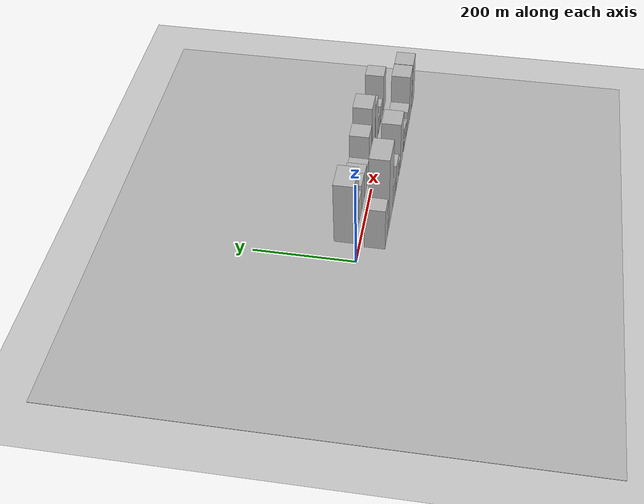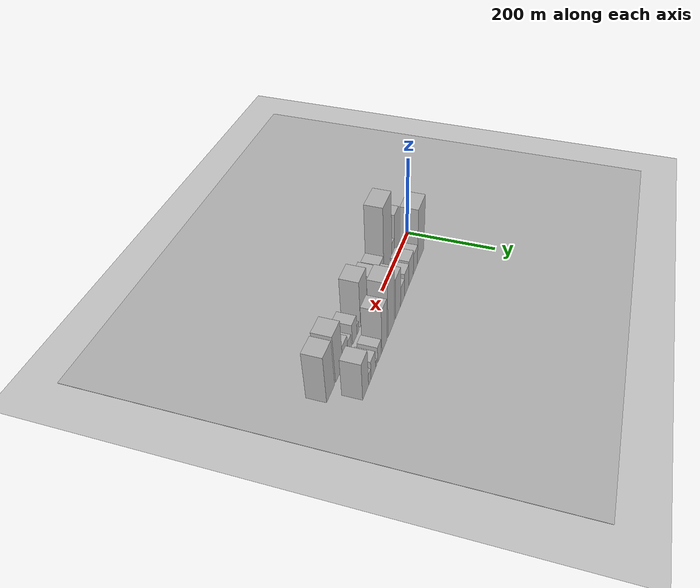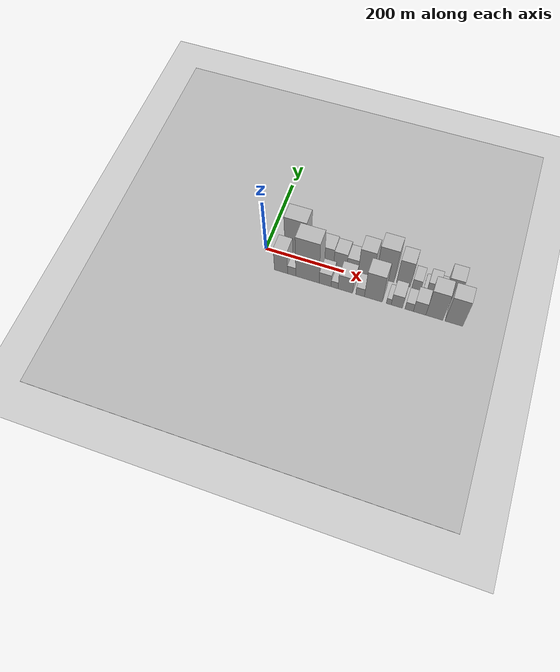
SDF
<?xml version="1.0" encoding="utf-8"?>

<sdf version="1.6">

   <world name="default">

      <gui fullscreen="0">

         <camera name="user_camera">

            <pose>-15 0 4.57585 0 0 0</pose>

            <view_controller>orbit</view_controller>

         </camera>

      </gui>

      <scene>

         <sky>

           <clouds>

             <speed>12</speed>

           </clouds>

         </sky>

         <ambient>0.4 0.4 0.4 1</ambient>

         <background>0.7 0.7 0.7 1</background>

         <shadows>1</shadows>

      </scene>

      <gravity>0 0 -9.8066</gravity>

      <magnetic_field>6e-06 2.3e-05 -4.2e-05</magnetic_field>

      <physics default="0" name="default_physics" type="ode">

         <ode>

            <solver>

               <type>quick</type>

               <iters>10</iters>

               <sor>1.0</sor>

               <use_dynamic_moi_rescaling>0</use_dynamic_moi_rescaling>

            </solver>

            <constraints>

               <cfm>0</cfm>

               <erp>0.2</erp>

               <contact_max_correcting_vel>100</contact_max_correcting_vel>

               <contact_surface_layer>0.001</contact_surface_layer>

            </constraints>

         </ode>

         <max_step_size>0.004</max_step_size>

         <real_time_factor>1</real_time_factor>

         <real_time_update_rate>250</real_time_update_rate>

      </physics>

      <light name="sun" type="directional">

         <cast_shadows>1</cast_shadows>

         <pose>0 0 10 0 0 0</pose>

         <diffuse>0.8 0.8 0.8 1</diffuse>

         <specular>0.2 0.2 0.2 1</specular>

         <attenuation>

            <range>1000</range>

            <constant>0.9</constant>

            <linear>0.01</linear>

            <quadratic>0.001</quadratic>

         </attenuation>

         <direction>-0.5 0.1 -0.9</direction>

      </light>

      <include>

         <name>ground_plane_1</name>

         <uri>model://HANNAS_ground_plane</uri>

         <pose>0 0 0  0 0 0</pose>

      </include>

      <include>

         <name>ground_plane_2</name>

         <uri>model://HANNAS_ground_plane</uri>

         <pose>100 0 0  0 0 0</pose>

      </include>

      <model name="building_1">

         <static>1</static>

         <pose frame="">73.9904 30.0000 0 0.000000 0.000000 1.570796</pose>

         <link name="link">

            <pose frame="">0 0 75.00 0 0 0</pose>

            <collision name="collision">

               <geometry>

                  <box>

                     <size>40.0000 55.9807 150.0000</size>

                  </box>

               </geometry>

               <max_contacts>10</max_contacts>

               <surface>

                  <contact>

                     <ode/>

                  </contact>

                  <bounce/>

                  <friction>

                     <torsional>

                        <ode/>

                     </torsional>

                     <ode/>

                  </friction>

               </surface>

            </collision>

            <visual name="visual">

               <cast_shadows>0</cast_shadows>

               <geometry>

                  <box>

                     <size>40.0000 55.9807 150.0000</size>

                  </box>

               </geometry>

               <material>

                  <script>

                     <uri>model://HANNAS_wall/materials/scripts</uri>

                     <uri>model://HANNAS_wall/materials/textures</uri>

                     <name>vrc/HANNAS_wall</name>

                  </script>

               </material>

            </visual>

            <self_collide>0</self_collide>

            <enable_wind>0</enable_wind>

            <kinematic>0</kinematic>

         </link>

      </model>

      <model name="building_2">

         <static>1</static>

         <pose frame="">118.3921 30.0000 0 0.000000 0.000000 1.570796</pose>

         <link name="link">

            <pose frame="">0 0 28.50 0 0 0</pose>

            <collision name="collision">

               <geometry>

                  <box>

                     <size>40.0000 32.8228 57.0000</size>

                  </box>

               </geometry>

               <max_contacts>10</max_contacts>

               <surface>

                  <contact>

                     <ode/>

                  </contact>

                  <bounce/>

                  <friction>

                     <torsional>

                        <ode/>

                     </torsional>

                     <ode/>

                  </friction>

               </surface>

            </collision>

            <visual name="visual">

               <cast_shadows>0</cast_shadows>

               <geometry>

                  <box>

                     <size>40.0000 32.8228 57.0000</size>

                  </box>

               </geometry>

               <material>

                  <script>

                     <uri>model://HANNAS_wall/materials/scripts</uri>

                     <uri>model://HANNAS_wall/materials/textures</uri>

                     <name>vrc/HANNAS_wall</name>

                  </script>

               </material>

            </visual>

            <self_collide>0</self_collide>

            <enable_wind>0</enable_wind>

            <kinematic>0</kinematic>

         </link>

      </model>

      <model name="building_3">

         <static>1</static>

         <pose frame="">153.1498 30.0000 0 0.000000 0.000000 1.570796</pose>

         <link name="link">

            <pose frame="">0 0 34.50 0 0 0</pose>

            <collision name="collision">

               <geometry>

                  <box>

                     <size>40.0000 36.6926 69.0000</size>

                  </box>

               </geometry>

               <max_contacts>10</max_contacts>

               <surface>

                  <contact>

                     <ode/>

                  </contact>

                  <bounce/>

                  <friction>

                     <torsional>

                        <ode/>

                     </torsional>

                     <ode/>

                  </friction>

               </surface>

            </collision>

            <visual name="visual">

               <cast_shadows>0</cast_shadows>

               <geometry>

                  <box>

                     <size>40.0000 36.6926 69.0000</size>

                  </box>

               </geometry>

               <material>

                  <script>

                     <uri>model://HANNAS_wall/materials/scripts</uri>

                     <uri>model://HANNAS_wall/materials/textures</uri>

                     <name>vrc/HANNAS_wall</name>

                  </script>

               </material>

            </visual>

            <self_collide>0</self_collide>

            <enable_wind>0</enable_wind>

            <kinematic>0</kinematic>

         </link>

      </model>

      <model name="building_4">

         <static>1</static>

         <pose frame="">187.9749 30.0000 0 0.000000 0.000000 1.570796</pose>

         <link name="link">

            <pose frame="">0 0 31.50 0 0 0</pose>

            <collision name="collision">

               <geometry>

                  <box>

                     <size>40.0000 32.9576 63.0000</size>

                  </box>

               </geometry>

               <max_contacts>10</max_contacts>

               <surface>

                  <contact>

                     <ode/>

                  </contact>

                  <bounce/>

                  <friction>

                     <torsional>

                        <ode/>

                     </torsional>

                     <ode/>

                  </friction>

               </surface>

            </collision>

            <visual name="visual">

               <cast_shadows>0</cast_shadows>

               <geometry>

                  <box>

                     <size>40.0000 32.9576 63.0000</size>

                  </box>

               </geometry>

               <material>

                  <script>

                     <uri>model://HANNAS_wall/materials/scripts</uri>

                     <uri>model://HANNAS_wall/materials/textures</uri>

                     <name>vrc/HANNAS_wall</name>

                  </script>

               </material>

            </visual>

            <self_collide>0</self_collide>

            <enable_wind>0</enable_wind>

            <kinematic>0</kinematic>

         </link>

      </model>

      <model name="building_5">

         <static>1</static>

         <pose frame="">219.0863 30.0000 0 0.000000 0.000000 1.570796</pose>

         <link name="link">

            <pose frame="">0 0 25.50 0 0 0</pose>

            <collision name="collision">

               <geometry>

                  <box>

                     <size>40.0000 29.2653 51.0000</size>

                  </box>

               </geometry>

               <max_contacts>10</max_contacts>

               <surface>

                  <contact>

                     <ode/>

                  </contact>

                  <bounce/>

                  <friction>

                     <torsional>

                        <ode/>

                     </torsional>

                     <ode/>

                  </friction>

               </surface>

            </collision>

            <visual name="visual">

               <cast_shadows>0</cast_shadows>

               <geometry>

                  <box>

                     <size>40.0000 29.2653 51.0000</size>

                  </box>

               </geometry>

               <material>

                  <script>

                     <uri>model://HANNAS_wall/materials/scripts</uri>

                     <uri>model://HANNAS_wall/materials/textures</uri>

                     <name>vrc/HANNAS_wall</name>

                  </script>

               </material>

            </visual>

            <self_collide>0</self_collide>

            <enable_wind>0</enable_wind>

            <kinematic>0</kinematic>

         </link>

      </model>

      <model name="building_6">

         <static>1</static>

         <pose frame="">252.9111 30.0000 0 0.000000 0.000000 1.570796</pose>

         <link name="link">

            <pose frame="">0 0 54.00 0 0 0</pose>

            <collision name="collision">

               <geometry>

                  <box>

                     <size>40.0000 38.3842 108.0000</size>

                  </box>

               </geometry>

               <max_contacts>10</max_contacts>

               <surface>

                  <contact>

                     <ode/>

                  </contact>

                  <bounce/>

                  <friction>

                     <torsional>

                        <ode/>

                     </torsional>

                     <ode/>

                  </friction>

               </surface>

            </collision>

            <visual name="visual">

               <cast_shadows>0</cast_shadows>

               <geometry>

                  <box>

                     <size>40.0000 38.3842 108.0000</size>

                  </box>

               </geometry>

               <material>

                  <script>

                     <uri>model://HANNAS_wall/materials/scripts</uri>

                     <uri>model://HANNAS_wall/materials/textures</uri>

                     <name>vrc/HANNAS_wall</name>

                  </script>

               </material>

            </visual>

            <self_collide>0</self_collide>

            <enable_wind>0</enable_wind>

            <kinematic>0</kinematic>

         </link>

      </model>

      <model name="building_7">

         <static>1</static>

         <pose frame="">300.3535 30.0000 0 0.000000 0.000000 1.570796</pose>

         <link name="link">

            <pose frame="">0 0 72.00 0 0 0</pose>

            <collision name="collision">

               <geometry>

                  <box>

                     <size>40.0000 44.5006 144.0000</size>

                  </box>

               </geometry>

               <max_contacts>10</max_contacts>

               <surface>

                  <contact>

                     <ode/>

                  </contact>

                  <bounce/>

                  <friction>

                     <torsional>

                        <ode/>

                     </torsional>

                     <ode/>

                  </friction>

               </surface>

            </collision>

            <visual name="visual">

               <cast_shadows>0</cast_shadows>

               <geometry>

                  <box>

                     <size>40.0000 44.5006 144.0000</size>

                  </box>

               </geometry>

               <material>

                  <script>

                     <uri>model://HANNAS_wall/materials/scripts</uri>

                     <uri>model://HANNAS_wall/materials/textures</uri>

                     <name>vrc/HANNAS_wall</name>

                  </script>

               </material>

            </visual>

            <self_collide>0</self_collide>

            <enable_wind>0</enable_wind>

            <kinematic>0</kinematic>

         </link>

      </model>

      <model name="building_8">

         <static>1</static>

         <pose frame="">345.7480 30.0000 0 0.000000 0.000000 1.570796</pose>

         <link name="link">

            <pose frame="">0 0 55.50 0 0 0</pose>

            <collision name="collision">

               <geometry>

                  <box>

                     <size>40.0000 34.2885 111.0000</size>

                  </box>

               </geometry>

               <max_contacts>10</max_contacts>

               <surface>

                  <contact>

                     <ode/>

                  </contact>

                  <bounce/>

                  <friction>

                     <torsional>

                        <ode/>

                     </torsional>

                     <ode/>

                  </friction>

               </surface>

            </collision>

            <visual name="visual">

               <cast_shadows>0</cast_shadows>

               <geometry>

                  <box>

                     <size>40.0000 34.2885 111.0000</size>

                  </box>

               </geometry>

               <material>

                  <script>

                     <uri>model://HANNAS_wall/materials/scripts</uri>

                     <uri>model://HANNAS_wall/materials/textures</uri>

                     <name>vrc/HANNAS_wall</name>

                  </script>

               </material>

            </visual>

            <self_collide>0</self_collide>

            <enable_wind>0</enable_wind>

            <kinematic>0</kinematic>

         </link>

      </model>

      <model name="building_9">

         <static>1</static>

         <pose frame="">378.1911 30.0000 0 0.000000 0.000000 1.570796</pose>

         <link name="link">

            <pose frame="">0 0 21.00 0 0 0</pose>

            <collision name="collision">

               <geometry>

                  <box>

                     <size>40.0000 22.5977 42.0000</size>

                  </box>

               </geometry>

               <max_contacts>10</max_contacts>

               <surface>

                  <contact>

                     <ode/>

                  </contact>

                  <bounce/>

                  <friction>

                     <torsional>

                        <ode/>

                     </torsional>

                     <ode/>

                  </friction>

               </surface>

            </collision>

            <visual name="visual">

               <cast_shadows>0</cast_shadows>

               <geometry>

                  <box>

                     <size>40.0000 22.5977 42.0000</size>

                  </box>

               </geometry>

               <material>

                  <script>

                     <uri>model://HANNAS_wall/materials/scripts</uri>

                     <uri>model://HANNAS_wall/materials/textures</uri>

                     <name>vrc/HANNAS_wall</name>

                  </script>

               </material>

            </visual>

            <self_collide>0</self_collide>

            <enable_wind>0</enable_wind>

            <kinematic>0</kinematic>

         </link>

      </model>

      <model name="building_10">

         <static>1</static>

         <pose frame="">398.9591 30.0000 0 0.000000 0.000000 1.570796</pose>

         <link name="link">

            <pose frame="">0 0 9.00 0 0 0</pose>

            <collision name="collision">

               <geometry>

                  <box>

                     <size>40.0000 8.9383 18.0000</size>

                  </box>

               </geometry>

               <max_contacts>10</max_contacts>

               <surface>

                  <contact>

                     <ode/>

                  </contact>

                  <bounce/>

                  <friction>

                     <torsional>

                        <ode/>

                     </torsional>

                     <ode/>

                  </friction>

               </surface>

            </collision>

            <visual name="visual">

               <cast_shadows>0</cast_shadows>

               <geometry>

                  <box>

                     <size>40.0000 8.9383 18.0000</size>

                  </box>

               </geometry>

               <material>

                  <script>

                     <uri>model://HANNAS_wall/materials/scripts</uri>

                     <uri>model://HANNAS_wall/materials/textures</uri>

                     <name>vrc/HANNAS_wall</name>

                  </script>

               </material>

            </visual>

            <self_collide>0</self_collide>

            <enable_wind>0</enable_wind>

            <kinematic>0</kinematic>

         </link>

      </model>

      <model name="building_11">

         <static>1</static>

         <pose frame="">417.1754 30.0000 0 0.000000 0.000000 1.570796</pose>

         <link name="link">

            <pose frame="">0 0 24.00 0 0 0</pose>

            <collision name="collision">

               <geometry>

                  <box>

                     <size>40.0000 27.4942 48.0000</size>

                  </box>

               </geometry>

               <max_contacts>10</max_contacts>

               <surface>

                  <contact>

                     <ode/>

                  </contact>

                  <bounce/>

                  <friction>

                     <torsional>

                        <ode/>

                     </torsional>

                     <ode/>

                  </friction>

               </surface>

            </collision>

            <visual name="visual">

               <cast_shadows>0</cast_shadows>

               <geometry>

                  <box>

                     <size>40.0000 27.4942 48.0000</size>

                  </box>

               </geometry>

               <material>

                  <script>

                     <uri>model://HANNAS_wall/materials/scripts</uri>

                     <uri>model://HANNAS_wall/materials/textures</uri>

                     <name>vrc/HANNAS_wall</name>

                  </script>

               </material>

            </visual>

            <self_collide>0</self_collide>

            <enable_wind>0</enable_wind>

            <kinematic>0</kinematic>

         </link>

      </model>

      <model name="building_12">

         <static>1</static>

         <pose frame="">438.4390 30.0000 0 0.000000 0.000000 1.570796</pose>

         <link name="link">

            <pose frame="">0 0 15.00 0 0 0</pose>

            <collision name="collision">

               <geometry>

                  <box>

                     <size>40.0000 15.0329 30.0000</size>

                  </box>

               </geometry>

               <max_contacts>10</max_contacts>

               <surface>

                  <contact>

                     <ode/>

                  </contact>

                  <bounce/>

                  <friction>

                     <torsional>

                        <ode/>

                     </torsional>

                     <ode/>

                  </friction>

               </surface>

            </collision>

            <visual name="visual">

               <cast_shadows>0</cast_shadows>

               <geometry>

                  <box>

                     <size>40.0000 15.0329 30.0000</size>

                  </box>

               </geometry>

               <material>

                  <script>

                     <uri>model://HANNAS_wall/materials/scripts</uri>

                     <uri>model://HANNAS_wall/materials/textures</uri>

                     <name>vrc/HANNAS_wall</name>

                  </script>

               </material>

            </visual>

            <self_collide>0</self_collide>

            <enable_wind>0</enable_wind>

            <kinematic>0</kinematic>

         </link>

      </model>

      <model name="building_13">

         <static>1</static>

         <pose frame="">463.3235 30.0000 0 0.000000 0.000000 1.570796</pose>

         <link name="link">

            <pose frame="">0 0 48.00 0 0 0</pose>

            <collision name="collision">

               <geometry>

                  <box>

                     <size>40.0000 34.7362 96.0000</size>

                  </box>

               </geometry>

               <max_contacts>10</max_contacts>

               <surface>

                  <contact>

                     <ode/>

                  </contact>

                  <bounce/>

                  <friction>

                     <torsional>

                        <ode/>

                     </torsional>

                     <ode/>

                  </friction>

               </surface>

            </collision>

            <visual name="visual">

               <cast_shadows>0</cast_shadows>

               <geometry>

                  <box>

                     <size>40.0000 34.7362 96.0000</size>

                  </box>

               </geometry>

               <material>

                  <script>

                     <uri>model://HANNAS_wall/materials/scripts</uri>

                     <uri>model://HANNAS_wall/materials/textures</uri>

                     <name>vrc/HANNAS_wall</name>

                  </script>

               </material>

            </visual>

            <self_collide>0</self_collide>

            <enable_wind>0</enable_wind>

            <kinematic>0</kinematic>

         </link>

      </model>

      <model name="building_14">

         <static>1</static>

         <pose frame="">56.8223 -30.0000 0 0.000000 0.000000 1.570796</pose>

         <link name="link">

            <pose frame="">0 0 51.00 0 0 0</pose>

            <collision name="collision">

               <geometry>

                  <box>

                     <size>40.0000 33.6445 102.0000</size>

                  </box>

               </geometry>

               <max_contacts>10</max_contacts>

               <surface>

                  <contact>

                     <ode/>

                  </contact>

                  <bounce/>

                  <friction>

                     <torsional>

                        <ode/>

                     </torsional>

                     <ode/>

                  </friction>

               </surface>

            </collision>

            <visual name="visual">

               <cast_shadows>0</cast_shadows>

               <geometry>

                  <box>

                     <size>40.0000 33.6445 102.0000</size>

                  </box>

               </geometry>

               <material>

                  <script>

                     <uri>model://HANNAS_wall/materials/scripts</uri>

                     <uri>model://HANNAS_wall/materials/textures</uri>

                     <name>vrc/HANNAS_wall</name>

                  </script>

               </material>

            </visual>

            <self_collide>0</self_collide>

            <enable_wind>0</enable_wind>

            <kinematic>0</kinematic>

         </link>

      </model>

      <model name="building_15">

         <static>1</static>

         <pose frame="">84.0943 -30.0000 0 0.000000 0.000000 1.570796</pose>

         <link name="link">

            <pose frame="">0 0 19.50 0 0 0</pose>

            <collision name="collision">

               <geometry>

                  <box>

                     <size>40.0000 20.8995 39.0000</size>

                  </box>

               </geometry>

               <max_contacts>10</max_contacts>

               <surface>

                  <contact>

                     <ode/>

                  </contact>

                  <bounce/>

                  <friction>

                     <torsional>

                        <ode/>

                     </torsional>

                     <ode/>

                  </friction>

               </surface>

            </collision>

            <visual name="visual">

               <cast_shadows>0</cast_shadows>

               <geometry>

                  <box>

                     <size>40.0000 20.8995 39.0000</size>

                  </box>

               </geometry>

               <material>

                  <script>

                     <uri>model://HANNAS_wall/materials/scripts</uri>

                     <uri>model://HANNAS_wall/materials/textures</uri>

                     <name>vrc/HANNAS_wall</name>

                  </script>

               </material>

            </visual>

            <self_collide>0</self_collide>

            <enable_wind>0</enable_wind>

            <kinematic>0</kinematic>

         </link>

      </model>

      <model name="building_16">

         <static>1</static>

         <pose frame="">124.1681 -30.0000 0 0.000000 0.000000 1.570796</pose>

         <link name="link">

            <pose frame="">0 0 90.00 0 0 0</pose>

            <collision name="collision">

               <geometry>

                  <box>

                     <size>40.0000 59.2482 180.0000</size>

                  </box>

               </geometry>

               <max_contacts>10</max_contacts>

               <surface>

                  <contact>

                     <ode/>

                  </contact>

                  <bounce/>

                  <friction>

                     <torsional>

                        <ode/>

                     </torsional>

                     <ode/>

                  </friction>

               </surface>

            </collision>

            <visual name="visual">

               <cast_shadows>0</cast_shadows>

               <geometry>

                  <box>

                     <size>40.0000 59.2482 180.0000</size>

                  </box>

               </geometry>

               <material>

                  <script>

                     <uri>model://HANNAS_wall/materials/scripts</uri>

                     <uri>model://HANNAS_wall/materials/textures</uri>

                     <name>vrc/HANNAS_wall</name>

                  </script>

               </material>

            </visual>

            <self_collide>0</self_collide>

            <enable_wind>0</enable_wind>

            <kinematic>0</kinematic>

         </link>

      </model>

      <model name="building_17">

         <static>1</static>

         <pose frame="">168.7151 -30.0000 0 0.000000 0.000000 1.570796</pose>

         <link name="link">

            <pose frame="">0 0 27.00 0 0 0</pose>

            <collision name="collision">

               <geometry>

                  <box>

                     <size>40.0000 29.8458 54.0000</size>

                  </box>

               </geometry>

               <max_contacts>10</max_contacts>

               <surface>

                  <contact>

                     <ode/>

                  </contact>

                  <bounce/>

                  <friction>

                     <torsional>

                        <ode/>

                     </torsional>

                     <ode/>

                  </friction>

               </surface>

            </collision>

            <visual name="visual">

               <cast_shadows>0</cast_shadows>

               <geometry>

                  <box>

                     <size>40.0000 29.8458 54.0000</size>

                  </box>

               </geometry>

               <material>

                  <script>

                     <uri>model://HANNAS_wall/materials/scripts</uri>

                     <uri>model://HANNAS_wall/materials/textures</uri>

                     <name>vrc/HANNAS_wall</name>

                  </script>

               </material>

            </visual>

            <self_collide>0</self_collide>

            <enable_wind>0</enable_wind>

            <kinematic>0</kinematic>

         </link>

      </model>

      <model name="building_18">

         <static>1</static>

         <pose frame="">192.3285 -30.0000 0 0.000000 0.000000 1.570796</pose>

         <link name="link">

            <pose frame="">0 0 15.00 0 0 0</pose>

            <collision name="collision">

               <geometry>

                  <box>

                     <size>40.0000 17.3808 30.0000</size>

                  </box>

               </geometry>

               <max_contacts>10</max_contacts>

               <surface>

                  <contact>

                     <ode/>

                  </contact>

                  <bounce/>

                  <friction>

                     <torsional>

                        <ode/>

                     </torsional>

                     <ode/>

                  </friction>

               </surface>

            </collision>

            <visual name="visual">

               <cast_shadows>0</cast_shadows>

               <geometry>

                  <box>

                     <size>40.0000 17.3808 30.0000</size>

                  </box>

               </geometry>

               <material>

                  <script>

                     <uri>model://HANNAS_wall/materials/scripts</uri>

                     <uri>model://HANNAS_wall/materials/textures</uri>

                     <name>vrc/HANNAS_wall</name>

                  </script>

               </material>

            </visual>

            <self_collide>0</self_collide>

            <enable_wind>0</enable_wind>

            <kinematic>0</kinematic>

         </link>

      </model>

      <model name="building_19">

         <static>1</static>

         <pose frame="">219.1979 -30.0000 0 0.000000 0.000000 1.570796</pose>

         <link name="link">

            <pose frame="">0 0 34.50 0 0 0</pose>

            <collision name="collision">

               <geometry>

                  <box>

                     <size>40.0000 36.3580 69.0000</size>

                  </box>

               </geometry>

               <max_contacts>10</max_contacts>

               <surface>

                  <contact>

                     <ode/>

                  </contact>

                  <bounce/>

                  <friction>

                     <torsional>

                        <ode/>

                     </torsional>

                     <ode/>

                  </friction>

               </surface>

            </collision>

            <visual name="visual">

               <cast_shadows>0</cast_shadows>

               <geometry>

                  <box>

                     <size>40.0000 36.3580 69.0000</size>

                  </box>

               </geometry>

               <material>

                  <script>

                     <uri>model://HANNAS_wall/materials/scripts</uri>

                     <uri>model://HANNAS_wall/materials/textures</uri>

                     <name>vrc/HANNAS_wall</name>

                  </script>

               </material>

            </visual>

            <self_collide>0</self_collide>

            <enable_wind>0</enable_wind>

            <kinematic>0</kinematic>

         </link>

      </model>

      <model name="building_20">

         <static>1</static>

         <pose frame="">256.0103 -30.0000 0 0.000000 0.000000 1.570796</pose>

         <link name="link">

            <pose frame="">0 0 18.00 0 0 0</pose>

            <collision name="collision">

               <geometry>

                  <box>

                     <size>40.0000 21.2668 36.0000</size>

                  </box>

               </geometry>

               <max_contacts>10</max_contacts>

               <surface>

                  <contact>

                     <ode/>

                  </contact>

                  <bounce/>

                  <friction>

                     <torsional>

                        <ode/>

                     </torsional>

                     <ode/>

                  </friction>

               </surface>

            </collision>

            <visual name="visual">

               <cast_shadows>0</cast_shadows>

               <geometry>

                  <box>

                     <size>40.0000 21.2668 36.0000</size>

                  </box>

               </geometry>

               <material>

                  <script>

                     <uri>model://HANNAS_wall/materials/scripts</uri>

                     <uri>model://HANNAS_wall/materials/textures</uri>

                     <name>vrc/HANNAS_wall</name>

                  </script>

               </material>

            </visual>

            <self_collide>0</self_collide>

            <enable_wind>0</enable_wind>

            <kinematic>0</kinematic>

         </link>

      </model>

      <model name="building_21">

         <static>1</static>

         <pose frame="">288.6905 -30.0000 0 0.000000 0.000000 1.570796</pose>

         <link name="link">

            <pose frame="">0 0 60.00 0 0 0</pose>

            <collision name="collision">

               <geometry>

                  <box>

                     <size>40.0000 44.0935 120.0000</size>

                  </box>

               </geometry>

               <max_contacts>10</max_contacts>

               <surface>

                  <contact>

                     <ode/>

                  </contact>

                  <bounce/>

                  <friction>

                     <torsional>

                        <ode/>

                     </torsional>

                     <ode/>

                  </friction>

               </surface>

            </collision>

            <visual name="visual">

               <cast_shadows>0</cast_shadows>

               <geometry>

                  <box>

                     <size>40.0000 44.0935 120.0000</size>

                  </box>

               </geometry>

               <material>

                  <script>

                     <uri>model://HANNAS_wall/materials/scripts</uri>

                     <uri>model://HANNAS_wall/materials/textures</uri>

                     <name>vrc/HANNAS_wall</name>

                  </script>

               </material>

            </visual>

            <self_collide>0</self_collide>

            <enable_wind>0</enable_wind>

            <kinematic>0</kinematic>

         </link>

      </model>

      <model name="building_22">

         <static>1</static>

         <pose frame="">326.5990 -30.0000 0 0.000000 0.000000 1.570796</pose>

         <link name="link">

            <pose frame="">0 0 13.50 0 0 0</pose>

            <collision name="collision">

               <geometry>

                  <box>

                     <size>40.0000 11.7236 27.0000</size>

                  </box>

               </geometry>

               <max_contacts>10</max_contacts>

               <surface>

                  <contact>

                     <ode/>

                  </contact>

                  <bounce/>

                  <friction>

                     <torsional>

                        <ode/>

                     </torsional>

                     <ode/>

                  </friction>

               </surface>

            </collision>

            <visual name="visual">

               <cast_shadows>0</cast_shadows>

               <geometry>

                  <box>

                     <size>40.0000 11.7236 27.0000</size>

                  </box>

               </geometry>

               <material>

                  <script>

                     <uri>model://HANNAS_wall/materials/scripts</uri>

                     <uri>model://HANNAS_wall/materials/textures</uri>

                     <name>vrc/HANNAS_wall</name>

                  </script>

               </material>

            </visual>

            <self_collide>0</self_collide>

            <enable_wind>0</enable_wind>

            <kinematic>0</kinematic>

         </link>

      </model>

      <model name="building_23">

         <static>1</static>

         <pose frame="">346.2064 -30.0000 0 0.000000 0.000000 1.570796</pose>

         <link name="link">

            <pose frame="">0 0 27.00 0 0 0</pose>

            <collision name="collision">

               <geometry>

                  <box>

                     <size>40.0000 27.4912 54.0000</size>

                  </box>

               </geometry>

               <max_contacts>10</max_contacts>

               <surface>

                  <contact>

                     <ode/>

                  </contact>

                  <bounce/>

                  <friction>

                     <torsional>

                        <ode/>

                     </torsional>

                     <ode/>

                  </friction>

               </surface>

            </collision>

            <visual name="visual">

               <cast_shadows>0</cast_shadows>

               <geometry>

                  <box>

                     <size>40.0000 27.4912 54.0000</size>

                  </box>

               </geometry>

               <material>

                  <script>

                     <uri>model://HANNAS_wall/materials/scripts</uri>

                     <uri>model://HANNAS_wall/materials/textures</uri>

                     <name>vrc/HANNAS_wall</name>

                  </script>

               </material>

            </visual>

            <self_collide>0</self_collide>

            <enable_wind>0</enable_wind>

            <kinematic>0</kinematic>

         </link>

      </model>

      <model name="building_24">

         <static>1</static>

         <pose frame="">376.1154 -30.0000 0 0.000000 0.000000 1.570796</pose>

         <link name="link">

            <pose frame="">0 0 18.00 0 0 0</pose>

            <collision name="collision">

               <geometry>

                  <box>

                     <size>40.0000 20.3268 36.0000</size>

                  </box>

               </geometry>

               <max_contacts>10</max_contacts>

               <surface>

                  <contact>

                     <ode/>

                  </contact>

                  <bounce/>

                  <friction>

                     <torsional>

                        <ode/>

                     </torsional>

                     <ode/>

                  </friction>

               </surface>

            </collision>

            <visual name="visual">

               <cast_shadows>0</cast_shadows>

               <geometry>

                  <box>

                     <size>40.0000 20.3268 36.0000</size>

                  </box>

               </geometry>

               <material>

                  <script>

                     <uri>model://HANNAS_wall/materials/scripts</uri>

                     <uri>model://HANNAS_wall/materials/textures</uri>

                     <name>vrc/HANNAS_wall</name>

                  </script>

               </material>

            </visual>

            <self_collide>0</self_collide>

            <enable_wind>0</enable_wind>

            <kinematic>0</kinematic>

         </link>

      </model>

      <model name="building_25">

         <static>1</static>

         <pose frame="">401.2955 -30.0000 0 0.000000 0.000000 1.570796</pose>

         <link name="link">

            <pose frame="">0 0 27.00 0 0 0</pose>

            <collision name="collision">

               <geometry>

                  <box>

                     <size>40.0000 30.0335 54.0000</size>

                  </box>

               </geometry>

               <max_contacts>10</max_contacts>

               <surface>

                  <contact>

                     <ode/>

                  </contact>

                  <bounce/>

                  <friction>

                     <torsional>

                        <ode/>

                     </torsional>

                     <ode/>

                  </friction>

               </surface>

            </collision>

            <visual name="visual">

               <cast_shadows>0</cast_shadows>

               <geometry>

                  <box>

                     <size>40.0000 30.0335 54.0000</size>

                  </box>

               </geometry>

               <material>

                  <script>

                     <uri>model://HANNAS_wall/materials/scripts</uri>

                     <uri>model://HANNAS_wall/materials/textures</uri>

                     <name>vrc/HANNAS_wall</name>

                  </script>

               </material>

            </visual>

            <self_collide>0</self_collide>

            <enable_wind>0</enable_wind>

            <kinematic>0</kinematic>

         </link>

      </model>

      <model name="building_26">

         <static>1</static>

         <pose frame="">436.8027 -30.0000 0 0.000000 0.000000 1.570796</pose>

         <link name="link">

            <pose frame="">0 0 61.50 0 0 0</pose>

            <collision name="collision">

               <geometry>

                  <box>

                     <size>40.0000 40.9810 123.0000</size>

                  </box>

               </geometry>

               <max_contacts>10</max_contacts>

               <surface>

                  <contact>

                     <ode/>

                  </contact>

                  <bounce/>

                  <friction>

                     <torsional>

                        <ode/>

                     </torsional>

                     <ode/>

                  </friction>

               </surface>

            </collision>

            <visual name="visual">

               <cast_shadows>0</cast_shadows>

               <geometry>

                  <box>

                     <size>40.0000 40.9810 123.0000</size>

                  </box>

               </geometry>

               <material>

                  <script>

                     <uri>model://HANNAS_wall/materials/scripts</uri>

                     <uri>model://HANNAS_wall/materials/textures</uri>

                     <name>vrc/HANNAS_wall</name>

                  </script>

               </material>

            </visual>

            <self_collide>0</self_collide>

            <enable_wind>0</enable_wind>

            <kinematic>0</kinematic>

         </link>

      </model>

      <model name="building_27">

         <static>1</static>

         <pose frame="">483.3205 -30.0000 0 0.000000 0.000000 1.570796</pose>

         <link name="link">

            <pose frame="">0 0 60.00 0 0 0</pose>

            <collision name="collision">

               <geometry>

                  <box>

                     <size>40.0000 42.0545 120.0000</size>

                  </box>

               </geometry>

               <max_contacts>10</max_contacts>

               <surface>

                  <contact>

                     <ode/>

                  </contact>

                  <bounce/>

                  <friction>

                     <torsional>

                        <ode/>

                     </torsional>

                     <ode/>

                  </friction>

               </surface>

            </collision>

            <visual name="visual">

               <cast_shadows>0</cast_shadows>

               <geometry>

                  <box>

                     <size>40.0000 42.0545 120.0000</size>

                  </box>

               </geometry>

               <material>

                  <script>

                     <uri>model://HANNAS_wall/materials/scripts</uri>

                     <uri>model://HANNAS_wall/materials/textures</uri>

                     <name>vrc/HANNAS_wall</name>

                  </script>

               </material>

            </visual>

            <self_collide>0</self_collide>

            <enable_wind>0</enable_wind>

            <kinematic>0</kinematic>

         </link>

      </model>

   </world>

</sdf>

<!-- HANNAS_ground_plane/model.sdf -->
<sdf version="1.4">
<model name="HANNAS_ground_plane">
  <static>true</static>
    <link name="link">
      <collision name="collision">
        <geometry>
          <plane>
            <normal>0 0 1</normal>
            <size>1000 1000</size>
          </plane>
        </geometry>
        <surface>
          <friction>
            <ode>
              <mu>100</mu>
              <mu2>50</mu2>
            </ode>
          </friction>
        </surface>
      </collision>
      <visual name="visual">
        <cast_shadows>false</cast_shadows>
        <geometry>
          <plane>
            <normal>0 0 1</normal>
            <size>1000 1000</size>
          </plane>
        </geometry>
        <material>
          <script>
            <uri>model://HANNAS_ground_plane/materials/scripts/HANNAS_ground_plane.material</uri>
	    <uri>model://HANNAS_ground_plane/materials/textures</uri>
            <name>HANNASGroundPlane/Image</name>
          </script>
        </material>
      </visual>
    </link>
  </model>
</sdf>
